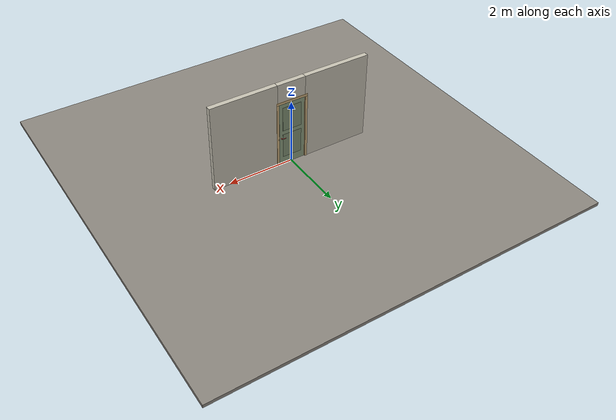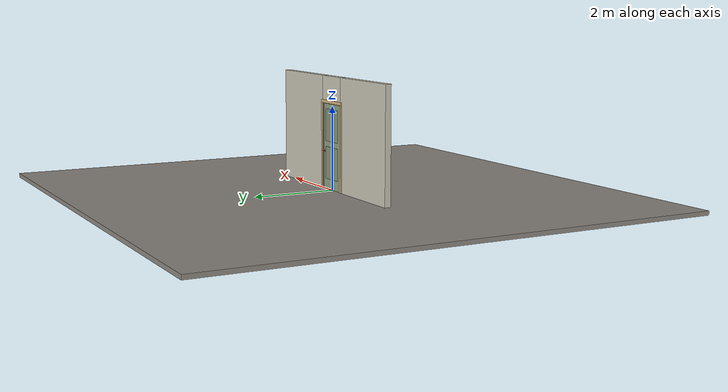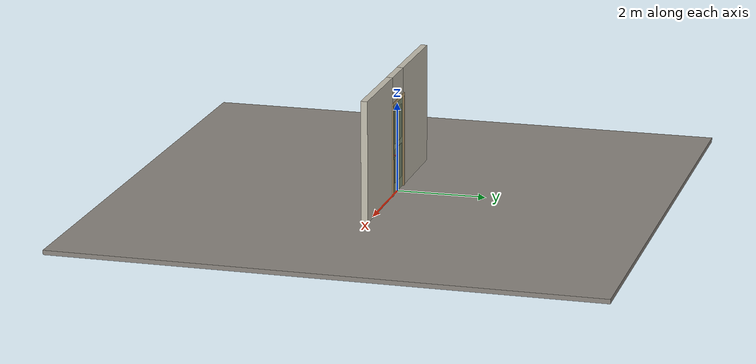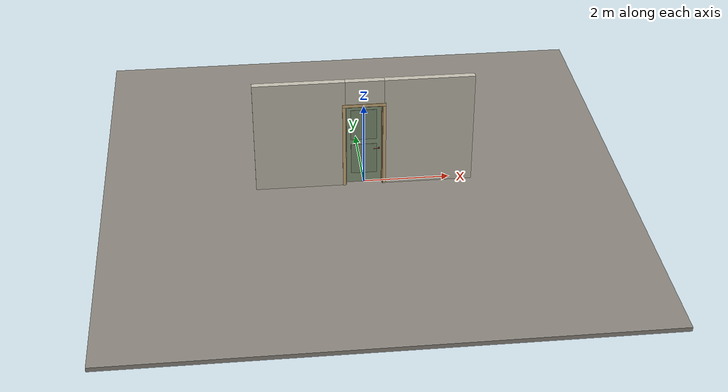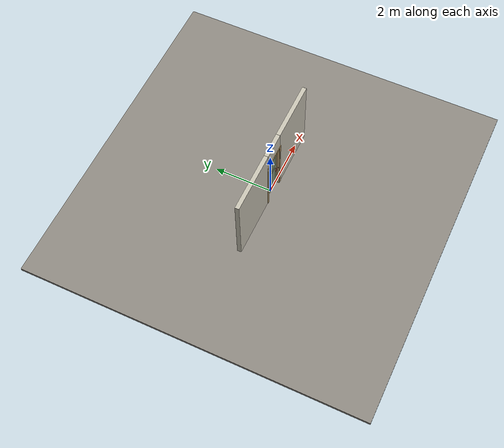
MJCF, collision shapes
<?xml version="1.0" ?>
<mujoco model="db0319_swing_single_full">
  <compiler angle="radian" meshdir="../../hardware" texturedir="../../textures" autolimits="true" inertiafromgeom="false"/>
  <option timestep="0.002" integrator="implicitfast" cone="elliptic" impratio="10" noslip_iterations="3">
    <flag multiccd="enable"/>
  </option>
  <size memory="16M"/>
  <default>
    <geom condim="4" solref="0.005 1" solimp="0.95 0.99 0.001"/>
    <joint solreflimit="0.005 1" solimplimit="0.95 0.99 0.001"/>
    <tendon solreflimit="0.005 1"/>
    <equality solref="0.002 1"/>
  </default>
  <visual>
    <headlight ambient="0.4 0.4 0.4" diffuse="0.7 0.7 0.7" specular="0.2 0.2 0.2"/>
    <quality shadowsize="4096"/>
    <map znear="0.01" zfar="60"/>
  </visual>
  <asset>
    <mesh name="hinge_9ae1f9b7de" file="hinge_9ae1f9b7de.obj"/>
    <mesh name="hinge_jamb_50e97ebc96" file="hinge_jamb_50e97ebc96.obj"/>
    <mesh name="lever_9f02b544cf" file="lever_9f02b544cf.obj"/>
    <material name="mat_floor" rgba="0.55 0.53 0.5 1" specular="0.2" shininess="0.15" reflectance="0"/>
    <material name="mat_wall" rgba="0.78 0.76 0.7 1" specular="0.2" shininess="0.1" reflectance="0"/>
    <material name="mat_leaf" rgba="0.55 0.62 0.5 1" specular="0.2" shininess="0.57" reflectance="0"/>
    <material name="mat_leaf_panel" rgba="0.506 0.57 0.46 1" specular="0.2" shininess="0.57" reflectance="0"/>
    <material name="mat_hinge" rgba="0.65 0.66 0.68 1" specular="0.74" shininess="0.5" reflectance="0.36"/>
    <material name="mat_op_nickel_satin" rgba="0.72 0.7 0.66 1" specular="0.8" shininess="0.65" reflectance="0.4"/>
    <material name="mat_trim" rgba="0.85 0.66 0.3 1" specular="0.8" shininess="0.75" reflectance="0.4"/>
    <material name="mat_bolt" rgba="0.85 0.66 0.3 1" specular="0.8" shininess="0.75" reflectance="0.4"/>
    <material name="mat_frame" rgba="0.82 0.7 0.5 1" specular="0.2" shininess="0.45" reflectance="0"/>
    <texture name="skybox" type="skybox" builtin="gradient" rgb1="0.6 0.7 0.85" rgb2="0.9 0.92 0.95" width="256" height="256"/>
  </asset>
  <worldbody>
    <light name="sun" pos="1.5 -2.5 4" dir="-0.3 0.5 -0.8" directional="true" diffuse="0.8 0.8 0.8" specular="0.3 0.3 0.3" castshadow="true"/>
    <light name="fill" pos="-1.5 2.5 3" dir="0.3 -0.5 -0.7" directional="true" diffuse="0.35 0.35 0.4" castshadow="false"/>
    <camera name="robot_view" pos="0 -2.590187 1.734312" xyaxes="1 0 0 0 0.26963 0.962964" fovy="52"/>
    <camera name="far_view" pos="0 2.494187 1.734312" xyaxes="-1 0 0 0 -0.26963 0.962964" fovy="52"/>
    <camera name="iso" pos="1.932062 -2.183438 2.141063" xyaxes="0.741536 0.670913 0 -0.242917 0.268487 0.932151" fovy="46"/>
    <camera name="detail_handle" pos="0.426 -0.8725 1.194" xyaxes="0.97561 0.219512 0 -0.070934 0.315262 0.94635" fovy="38"/>
    <geom name="floor" type="box" size="6 6 0.05" pos="0 0 -0.05" material="mat_floor" group="0" contype="1" conaffinity="1" friction="0.8 0.005 0.0001" density="2400"/>
    <geom name="wall_left" type="box" size="1.0355 0.0725 1.35" pos="-1.4645 -0.048 1.35" material="mat_wall" group="0" contype="1" conaffinity="1" friction="0.6 0.005 0.0001" density="800"/>
    <geom name="wall_right" type="box" size="1.0205 0.0725 1.35" pos="1.4795 -0.048 1.35" material="mat_wall" group="0" contype="1" conaffinity="1" friction="0.6 0.005 0.0001" density="800"/>
    <geom name="wall_header" type="box" size="0.444 0.0725 0.303" pos="0.015 -0.048 2.397" material="mat_wall" group="0" contype="1" conaffinity="1" friction="0.6 0.005 0.0001" density="800"/>
    <geom name="hinge_0_jamb" type="mesh" mesh="hinge_jamb_50e97ebc96" pos="-0.407 0.0245 0.259" quat="0 1 0 0" material="mat_hinge" group="1" contype="0" conaffinity="0" density="7850"/>
    <geom name="hinge_1_jamb" type="mesh" mesh="hinge_jamb_50e97ebc96" pos="-0.407 0.0245 1.861" quat="0 1 0 0" material="mat_hinge" group="1" contype="0" conaffinity="0" density="7850"/>
    <geom name="jamb_hinge" type="box" size="0.0095 0.0725 1.0225" pos="-0.4195 -0.048 1.0225" material="mat_frame" group="0" contype="1" conaffinity="1" friction="0.6 0.005 0.0001" density="400"/>
    <geom name="strike_914_wall_n" type="box" size="0.0245 0.056325 0.0167" pos="0.4345 -0.064175 0.914" material="mat_frame" group="0" contype="1" conaffinity="1" friction="0.6 0.005 0.0001" density="400"/>
    <geom name="strike_914_wall_p" type="box" size="0.0245 0.008 0.0167" pos="0.4345 0.01585 0.914" material="mat_frame" group="0" contype="1" conaffinity="1" friction="0.6 0.005 0.0001" density="400"/>
    <geom name="strike_914_ramp" type="box" size="0.0245 0.01649 0.0167" pos="0.439136 0.028673 0.914" quat="0.977148 0 0 -0.212558" material="mat_frame" group="0" contype="1" conaffinity="1" friction="0.12 0.005 0.0001" density="400"/>
    <geom name="strike_914_back" type="box" size="0.01615 0.00785 0.0167" pos="0.44285 0 0.914" material="mat_frame" group="0" contype="1" conaffinity="1" friction="0.6 0.005 0.0001" density="400"/>
    <geom name="jamb_strike_0" type="box" size="0.0245 0.0725 0.44865" pos="0.4345 -0.048 0.44865" material="mat_frame" group="0" contype="1" conaffinity="1" friction="0.6 0.005 0.0001" density="400"/>
    <geom name="jamb_strike_1" type="box" size="0.0245 0.0725 0.55715" pos="0.4345 -0.048 1.48785" material="mat_frame" group="0" contype="1" conaffinity="1" friction="0.6 0.005 0.0001" density="400"/>
    <geom name="jamb_head" type="box" size="0.444 0.0725 0.0095" pos="0.015 -0.048 2.0545" material="mat_frame" group="0" contype="1" conaffinity="1" friction="0.6 0.005 0.0001" density="400"/>
    <geom name="head_stud" type="box" size="0.444 0.0725 0.015" pos="0.015 -0.048 2.079" material="mat_wall" group="0" contype="1" conaffinity="1" friction="0.6 0.005 0.0001" density="500"/>
    <geom name="stop_hinge" type="box" size="0.0055 0.016 1.0225" pos="-0.4045 -0.034 1.0225" material="mat_frame" group="0" contype="1" conaffinity="1" friction="0.6 0.005 0.0001" density="400"/>
    <geom name="stop_strike" type="box" size="0.0055 0.016 1.0225" pos="0.4045 -0.034 1.0225" material="mat_frame" group="0" contype="1" conaffinity="1" friction="0.6 0.005 0.0001" density="400"/>
    <geom name="stop_head" type="box" size="0.41 0.016 0.0055" pos="0 -0.034 2.0395" material="mat_frame" group="0" contype="1" conaffinity="1" friction="0.6 0.005 0.0001" density="400"/>
    <geom name="casing_l_n" type="box" size="0.035 0.008 1.032" pos="-0.459 -0.1285 1.0225" material="mat_frame" group="2" contype="0" conaffinity="0" density="400"/>
    <geom name="casing_r_n" type="box" size="0.035 0.008 1.032" pos="0.459 -0.1285 1.0225" material="mat_frame" group="2" contype="0" conaffinity="0" density="400"/>
    <geom name="casing_h_n" type="box" size="0.494 0.008 0.035" pos="0 -0.1285 2.094" material="mat_frame" group="2" contype="0" conaffinity="0" density="400"/>
    <geom name="casing_l_p" type="box" size="0.035 0.008 1.032" pos="-0.459 0.0325 1.0225" material="mat_frame" group="2" contype="0" conaffinity="0" density="400"/>
    <geom name="casing_r_p" type="box" size="0.035 0.008 1.032" pos="0.459 0.0325 1.0225" material="mat_frame" group="2" contype="0" conaffinity="0" density="400"/>
    <geom name="casing_h_p" type="box" size="0.494 0.008 0.035" pos="0 0.0325 2.094" material="mat_frame" group="2" contype="0" conaffinity="0" density="400"/>
    <site name="approach_point" pos="0 -1.5 0" quat="1 0 0 0" size="0.05" rgba="0.2 0.9 0.2 0.5" group="4"/>
    <site name="goal_point" pos="0 1.5 0" quat="1 0 0 0" size="0.05" rgba="0.2 0.9 0.2 0.5" group="4"/>
    <site name="door_plane_center" pos="0 0 1.0225" quat="1 0 0 0" size="0.02" rgba="0.2 0.9 0.2 0.5" group="4"/>
    <body name="leaf" pos="-0.41 0 0">
      <inertial pos="0.402613 0.000372 1.025563" mass="12.798009" quat="0.500401 0.49908 -0.500902 0.499616" diaginertia="0.732464416 4.468441853 5.198130943"/>
      <joint name="leaf_hinge" type="hinge" axis="0 0 1" pos="0.003 0.0245 0" limited="true" range="0 1.919862" damping="0.210326" frictionloss="0.073973" armature="0.02"/>
      <geom name="leaf_slab" type="box" size="0.4065 0.0175 1.016" pos="0.4095 0 1.025" material="mat_leaf" group="0" contype="1" conaffinity="1" friction="0.35 0.005 0.0001" density="1"/>
      <geom name="leaf_panel_0_n" type="box" size="0.2965 0.003 0.38422" pos="0.4095 -0.0205 0.63674" material="mat_leaf_panel" group="1" contype="0" conaffinity="0" density="1"/>
      <geom name="leaf_panel_0_p" type="box" size="0.2965 0.003 0.38422" pos="0.4095 0.0205 0.63674" material="mat_leaf_panel" group="1" contype="0" conaffinity="0" density="1"/>
      <geom name="leaf_panel_1_n" type="box" size="0.2965 0.003 0.38422" pos="0.4095 -0.0205 1.53518" material="mat_leaf_panel" group="1" contype="0" conaffinity="0" density="1"/>
      <geom name="leaf_panel_1_p" type="box" size="0.2965 0.003 0.38422" pos="0.4095 0.0205 1.53518" material="mat_leaf_panel" group="1" contype="0" conaffinity="0" density="1"/>
      <geom name="hinge_0" type="mesh" mesh="hinge_9ae1f9b7de" pos="0.003 0.0245 0.259" quat="0 1 0 0" material="mat_hinge" group="1" contype="0" conaffinity="0" density="7850"/>
      <geom name="hinge_1" type="mesh" mesh="hinge_9ae1f9b7de" pos="0.003 0.0245 1.861" quat="0 1 0 0" material="mat_hinge" group="1" contype="0" conaffinity="0" density="7850"/>
      <geom name="leaf_latch_bolt_faceplate" type="box" size="0.0006 0.01235 0.0267" pos="0.8154 0 0.914" material="mat_bolt" group="1" contype="0" conaffinity="0" density="8500"/>
      <site name="leaf_edge_mid" pos="0.816 0 1.016" quat="1 0 0 0" size="0.02" rgba="0.2 0.9 0.2 0.5" group="4"/>
      <body name="leaf_handle" pos="0.756 0 0.914">
        <inertial pos="-0.028543 0.000681 0" mass="0.978226" quat="0.702362 0 0 -0.71182" diaginertia="0.001771826 0.00319423 0.004787852"/>
        <joint name="leaf_handle_hinge" type="hinge" axis="0 -1 0" limited="true" range="0 0.96" damping="0.245624" frictionloss="0.048" stiffness="1.2" springref="-0.458333" armature="0.01"/>
        <geom name="leaf_handle_spindle" type="cylinder" size="0.006 0.0255" pos="0 0 0" quat="0.707107 -0.707107 0 0" material="mat_op_nickel_satin" group="1" contype="0" conaffinity="0" density="7850"/>
        <geom name="leaf_handle_lever_n" type="mesh" mesh="lever_9f02b544cf" pos="0 -0.0175 0" quat="0.707107 0.707107 0 0" material="mat_op_nickel_satin" group="1" contype="0" conaffinity="0" density="3000"/>
        <geom name="leaf_handle_lever_col_n" type="capsule" size="0.0095 0.053" pos="-0.0625 -0.0725 0" quat="0.707107 0 -0.707107 0" material="mat_op_nickel_satin" group="3" contype="1" conaffinity="1" rgba="0.8 0.3 0.3 0.25" friction="0.7 0.01 0.0001" density="3000"/>
        <geom name="leaf_handle_hub_col_n" type="cylinder" size="0.012 0.022" pos="0 -0.0475 0" quat="0.707107 -0.707107 0 0" material="mat_op_nickel_satin" group="3" contype="1" conaffinity="1" rgba="0.8 0.3 0.3 0.25" friction="0.6 0.005 0.0001" density="3000"/>
        <geom name="leaf_handle_lever_p" type="mesh" mesh="lever_9f02b544cf" pos="0 0.0175 0" quat="-0.707107 0.707107 0 0" material="mat_op_nickel_satin" group="1" contype="0" conaffinity="0" density="3000"/>
        <geom name="leaf_handle_lever_col_p" type="capsule" size="0.0095 0.053" pos="-0.0625 0.0725 0" quat="0.707107 0 -0.707107 0" material="mat_op_nickel_satin" group="3" contype="1" conaffinity="1" rgba="0.8 0.3 0.3 0.25" friction="0.7 0.01 0.0001" density="3000"/>
        <geom name="leaf_handle_hub_col_p" type="cylinder" size="0.012 0.022" pos="0 0.0475 0" quat="0.707107 -0.707107 0 0" material="mat_op_nickel_satin" group="3" contype="1" conaffinity="1" rgba="0.8 0.3 0.3 0.25" friction="0.6 0.005 0.0001" density="3000"/>
        <geom name="leaf_handle_turn_button_p" type="cylinder" size="0.006 0.005" pos="0 0.083 0" quat="0.707107 -0.707107 0 0" material="mat_trim" group="1" contype="0" conaffinity="0" density="7100"/>
        <site name="leaf_handle_grip_n" pos="-0.1 -0.0725 0" quat="1 0 0 0" size="0.012" rgba="0.2 0.9 0.2 0.5" group="4"/>
        <site name="leaf_handle_grip_p" pos="-0.1 0.0725 0" quat="1 0 0 0" size="0.012" rgba="0.2 0.9 0.2 0.5" group="4"/>
      </body>
      <body name="leaf_latch_bolt" pos="0.816 0 0.914">
        <inertial pos="-0.00865 0 0" mass="0.041419" quat="0.92388 -0.382683 0 0" diaginertia="0.000000798 0.000005598 0.000005598"/>
        <joint name="leaf_latch_bolt_slide" type="slide" axis="-1 0 0" limited="true" range="0 0.0127" damping="2" frictionloss="0.3" stiffness="300" springref="-0.008333" armature="0.1"/>
        <geom name="leaf_latch_bolt_capsule" type="capsule" size="0.00635 0.015" pos="-0.00865 0 0" quat="0.707107 0 0.707107 0" material="mat_bolt" group="0" contype="1" conaffinity="1" friction="0.2 0.005 0.0001" density="8500"/>
      </body>
    </body>
  </worldbody>
  <tendon>
    <fixed name="leaf_latch_bolt_coupling" limited="true" range="0 10">
      <joint joint="leaf_latch_bolt_slide" coef="1"/>
      <joint joint="leaf_handle_hinge" coef="-0.013956"/>
    </fixed>
  </tendon>
  <sensor>
    <jointpos name="leaf_hinge_pos" joint="leaf_hinge"/>
    <jointvel name="leaf_hinge_vel" joint="leaf_hinge"/>
    <jointpos name="leaf_handle_hinge_pos" joint="leaf_handle_hinge"/>
    <jointvel name="leaf_handle_hinge_vel" joint="leaf_handle_hinge"/>
    <jointpos name="leaf_latch_bolt_slide_pos" joint="leaf_latch_bolt_slide"/>
    <jointvel name="leaf_latch_bolt_slide_vel" joint="leaf_latch_bolt_slide"/>
  </sensor>
</mujoco>
